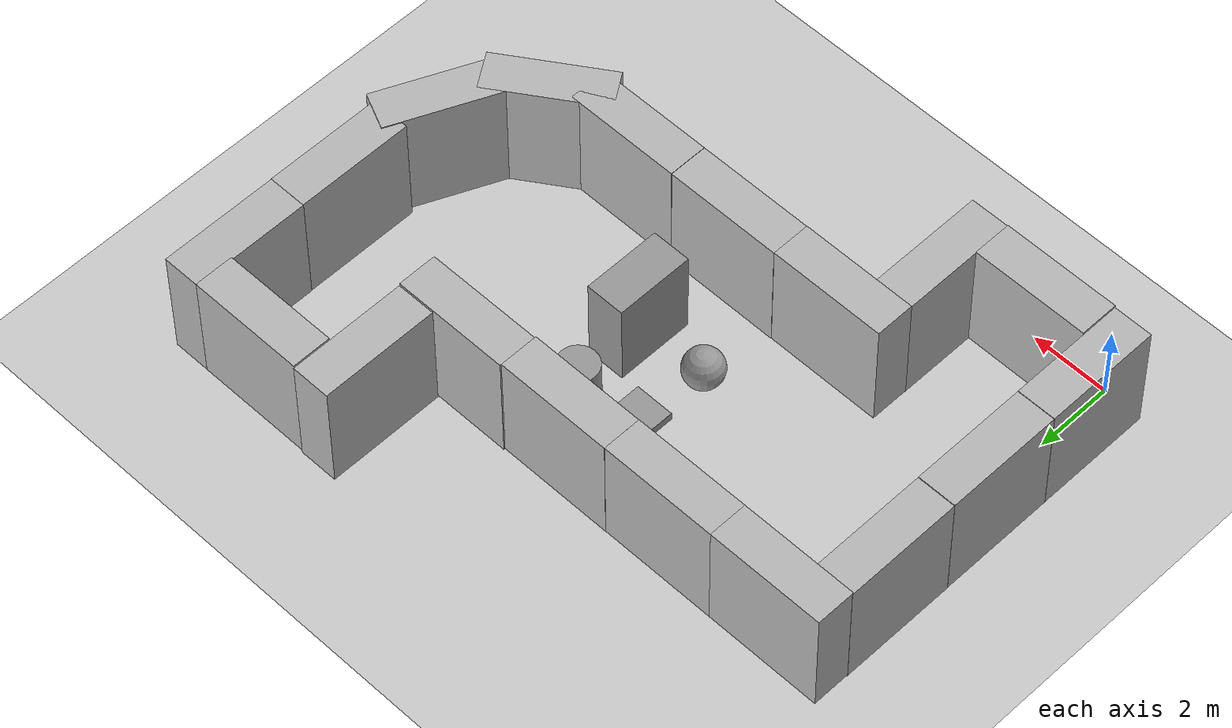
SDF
<sdf version="1.6">
 <world name="default">
  <light name="sun" type="directional">
   <pose>0 0 10 0 -0 0</pose>
   <diffuse>0.8 0.8 0.8 1</diffuse>
   <specular>0.2 0.2 0.2 1</specular>
   <attenuation>
    <range>1000</range>
    <constant>0.9</constant>
    <linear>0.01</linear>
    <quadratic>0.001</quadratic>
   </attenuation>
   <direction>-0.5 0.1 -0.9</direction>
  </light>
  <model name="ground_plane">
   <static>1</static>
   <link name="link">
    <collision name="collision">
     <geometry><plane><normal>0 0 1</normal><size>100 100</size></plane></geometry>
     <surface>
      <contact><collide_bitmask>65535</collide_bitmask></contact>
      <friction><ode><mu>100</mu><mu2>50</mu2></ode></friction>
     </surface>
    </collision>
    <visual name="visual">
     <cast_shadows>0</cast_shadows>
     <geometry><plane><normal>0 0 1</normal><size>100 100</size></plane></geometry>
     <material>
      <script><uri>file://media/materials/scripts/gazebo.material</uri><name>Gazebo/Grey</name></script>
     </material>
    </visual>
   </link>
  </model>
  <gravity>0 0 -9.8</gravity>
  <magnetic_field>6e-06 2.3e-05 -4.2e-05</magnetic_field>
  <atmosphere type="adiabatic"/>
  <physics name="default_physics" default="0" type="ode">
   <max_step_size>0.001</max_step_size>
   <real_time_factor>1</real_time_factor>
   <real_time_update_rate>1000</real_time_update_rate>
  </physics>
  <scene><ambient>0.4 0.4 0.4 1</ambient><background>0.7 0.7 0.7 1</background><shadows>1</shadows></scene>
  <spherical_coordinates>
   <surface_model>EARTH_WGS84</surface_model>
   <latitude_deg>0</latitude_deg>
   <longitude_deg>0</longitude_deg>
   <elevation>0</elevation>
   <heading_deg>0</heading_deg>
  </spherical_coordinates>
  <model name="brick_box_3x1x3">
   <static>1</static>
   <link name="chassis">
    <pose>0 0 1.5 0 -0 0</pose>
    <collision name="collision"><geometry><box><size>3 1 3</size></box></geometry></collision>
    <visual name="visual">
     <geometry><mesh><uri>model://brick_box_3x1x3/meshes/simple_box.dae</uri><scale>3 1 3</scale></mesh></geometry>
     <material>
      <script>
       <uri>model://brick_box_3x1x3/materials/scripts</uri>
       <uri>model://brick_box_3x1x3/materials/textures</uri>
       <name>BrickBox/Diffuse</name>
      </script>
     </material>
    </visual>
   </link>
   <pose>1.51624 0.50191 0 0 -0 0</pose>
  </model>
  <model name="brick_box_3x1x3_0">
   <static>1</static>
   <link name="chassis">
    <pose>0 0 1.5 0 -0 0</pose>
    <collision name="collision"><geometry><box><size>3 1 3</size></box></geometry></collision>
    <visual name="visual">
     <geometry><mesh><uri>model://brick_box_3x1x3/meshes/simple_box.dae</uri><scale>3 1 3</scale></mesh></geometry>
     <material>
      <script>
       <uri>model://brick_box_3x1x3/materials/scripts</uri>
       <uri>model://brick_box_3x1x3/materials/textures</uri>
       <name>BrickBox/Diffuse</name>
      </script>
     </material>
    </visual>
   </link>
   <pose>3.51375 1.50393 -0.02794 0 -0 1.5708</pose>
  </model>
  <model name="brick_box_3x1x3_0_clone">
   <static>1</static>
   <link name="chassis">
    <pose>0 0 1.5 0 -0 0</pose>
    <collision name="collision"><geometry><box><size>3 1 3</size></box></geometry></collision>
    <visual name="visual">
     <geometry><mesh><uri>model://brick_box_3x1x3/meshes/simple_box.dae</uri><scale>3 1 3</scale></mesh></geometry>
     <material>
      <script>
       <uri>model://brick_box_3x1x3/materials/scripts</uri>
       <uri>model://brick_box_3x1x3/materials/textures</uri>
       <name>BrickBox/Diffuse</name>
      </script>
     </material>
    </visual>
   </link>
   <pose>-0.499565 1.52608 -0.02794 0 -0 1.5708</pose>
  </model>
  <model name="brick_box_3x1x3_clone">
   <static>1</static>
   <link name="chassis">
    <pose>0 0 1.5 0 -0 0</pose>
    <collision name="collision"><geometry><box><size>3 1 3</size></box></geometry></collision>
    <visual name="visual">
     <geometry><mesh><uri>model://brick_box_3x1x3/meshes/simple_box.dae</uri><scale>3 1 3</scale></mesh></geometry>
     <material>
      <script>
       <uri>model://brick_box_3x1x3/materials/scripts</uri>
       <uri>model://brick_box_3x1x3/materials/textures</uri>
       <name>BrickBox/Diffuse</name>
      </script>
     </material>
    </visual>
   </link>
   <pose>4.50924 3.48498 0 0 -0 0</pose>
  </model>
  <model name="brick_box_3x1x3_clone_clone">
   <static>1</static>
   <link name="chassis">
    <pose>0 0 1.5 0 -0 0</pose>
    <collision name="collision"><geometry><box><size>3 1 3</size></box></geometry></collision>
    <visual name="visual">
     <geometry><mesh><uri>model://brick_box_3x1x3/meshes/simple_box.dae</uri><scale>3 1 3</scale></mesh></geometry>
     <material>
      <script>
       <uri>model://brick_box_3x1x3/materials/scripts</uri>
       <uri>model://brick_box_3x1x3/materials/textures</uri>
       <name>BrickBox/Diffuse</name>
      </script>
     </material>
    </visual>
   </link>
   <pose>7.50541 3.49349 0 0 -0 0</pose>
  </model>
  <model name="brick_box_3x1x3_0_clone_clone">
   <static>1</static>
   <link name="chassis">
    <pose>0 0 1.5 0 -0 0</pose>
    <collision name="collision"><geometry><box><size>3 1 3</size></box></geometry></collision>
    <visual name="visual">
     <geometry><mesh><uri>model://brick_box_3x1x3/meshes/simple_box.dae</uri><scale>3 1 3</scale></mesh></geometry>
     <material>
      <script>
       <uri>model://brick_box_3x1x3/materials/scripts</uri>
       <uri>model://brick_box_3x1x3/materials/textures</uri>
       <name>BrickBox/Diffuse</name>
      </script>
     </material>
    </visual>
   </link>
   <pose>-0.501636 4.53368 -0.02794 0 -0 1.5708</pose>
  </model>
  <model name="brick_box_3x1x3_0_clone_clone_clone">
   <static>1</static>
   <link name="chassis">
    <pose>0 0 1.5 0 -0 0</pose>
    <collision name="collision"><geometry><box><size>3 1 3</size></box></geometry></collision>
    <visual name="visual">
     <geometry><mesh><uri>model://brick_box_3x1x3/meshes/simple_box.dae</uri><scale>3 1 3</scale></mesh></geometry>
     <material>
      <script>
       <uri>model://brick_box_3x1x3/materials/scripts</uri>
       <uri>model://brick_box_3x1x3/materials/textures</uri>
       <name>BrickBox/Diffuse</name>
      </script>
     </material>
    </visual>
   </link>
   <pose>-0.506311 7.54462 -0.02794 0 -0 1.5708</pose>
  </model>
  <model name="brick_box_3x1x3_clone_clone_0">
   <static>1</static>
   <link name="chassis">
    <pose>0 0 1.5 0 -0 0</pose>
    <collision name="collision"><geometry><box><size>3 1 3</size></box></geometry></collision>
    <visual name="visual">
     <geometry><mesh><uri>model://brick_box_3x1x3/meshes/simple_box.dae</uri><scale>3 1 3</scale></mesh></geometry>
     <material>
      <script>
       <uri>model://brick_box_3x1x3/materials/scripts</uri>
       <uri>model://brick_box_3x1x3/materials/textures</uri>
       <name>BrickBox/Diffuse</name>
      </script>
     </material>
    </visual>
   </link>
   <pose>0.497941 9.50684 0 0 -0 0</pose>
  </model>
  <model name="brick_box_3x1x3_clone_clone_0_clone">
   <static>1</static>
   <link name="chassis">
    <pose>0 0 1.5 0 -0 0</pose>
    <collision name="collision"><geometry><box><size>3 1 3</size></box></geometry></collision>
    <visual name="visual">
     <geometry><mesh><uri>model://brick_box_3x1x3/meshes/simple_box.dae</uri><scale>3 1 3</scale></mesh></geometry>
     <material>
      <script>
       <uri>model://brick_box_3x1x3/materials/scripts</uri>
       <uri>model://brick_box_3x1x3/materials/textures</uri>
       <name>BrickBox/Diffuse</name>
      </script>
     </material>
    </visual>
   </link>
   <pose>3.49682 9.50712 0 0 -0 0</pose>
  </model>
  <model name="brick_box_3x1x3_clone_clone_0_clone_clone">
   <static>1</static>
   <link name="chassis">
    <pose>0 0 1.5 0 -0 0</pose>
    <collision name="collision"><geometry><box><size>3 1 3</size></box></geometry></collision>
    <visual name="visual">
     <geometry><mesh><uri>model://brick_box_3x1x3/meshes/simple_box.dae</uri><scale>3 1 3</scale></mesh></geometry>
     <material>
      <script>
       <uri>model://brick_box_3x1x3/materials/scripts</uri>
       <uri>model://brick_box_3x1x3/materials/textures</uri>
       <name>BrickBox/Diffuse</name>
      </script>
     </material>
    </visual>
   </link>
   <pose>6.49688 9.5128 0 0 -0 0</pose>
  </model>
  <model name="brick_box_3x1x3_clone_clone_0_clone_clone_clone_0">
   <static>1</static>
   <link name="chassis">
    <pose>0 0 1.5 0 -0 0</pose>
    <collision name="collision"><geometry><box><size>3 1 3</size></box></geometry></collision>
    <visual name="visual">
     <geometry><mesh><uri>model://brick_box_3x1x3/meshes/simple_box.dae</uri><scale>3 1 3</scale></mesh></geometry>
     <material>
      <script>
       <uri>model://brick_box_3x1x3/materials/scripts</uri>
       <uri>model://brick_box_3x1x3/materials/textures</uri>
       <name>BrickBox/Diffuse</name>
      </script>
     </material>
    </visual>
   </link>
   <pose>9.49333 9.54908 0 0 -0 0</pose>
  </model>
  <model name="brick_box_3x1x3_clone_clone_0_clone_clone_clone_0_clone">
   <static>1</static>
   <link name="chassis">
    <pose>0 0 1.5 0 -0 0</pose>
    <collision name="collision"><geometry><box><size>3 1 3</size></box></geometry></collision>
    <visual name="visual">
     <geometry><mesh><uri>model://brick_box_3x1x3/meshes/simple_box.dae</uri><scale>3 1 3</scale></mesh></geometry>
     <material>
      <script>
       <uri>model://brick_box_3x1x3/materials/scripts</uri>
       <uri>model://brick_box_3x1x3/materials/textures</uri>
       <name>BrickBox/Diffuse</name>
      </script>
     </material>
    </visual>
   </link>
   <pose>10.5143 3.49171 0 0 -0 0</pose>
  </model>
  <model name="brick_box_3x1x3_clone_clone_0_clone_clone_clone_0_clone_clone">
   <static>1</static>
   <link name="chassis">
    <pose>0 0 1.5 0 -0 0</pose>
    <collision name="collision"><geometry><box><size>3 1 3</size></box></geometry></collision>
    <visual name="visual">
     <geometry><mesh><uri>model://brick_box_3x1x3/meshes/simple_box.dae</uri><scale>3 1 3</scale></mesh></geometry>
     <material>
      <script>
       <uri>model://brick_box_3x1x3/materials/scripts</uri>
       <uri>model://brick_box_3x1x3/materials/textures</uri>
       <name>BrickBox/Diffuse</name>
      </script>
     </material>
    </visual>
   </link>
   <pose>12.4927 12.5439 0 0 -0 0</pose>
  </model>
  <model name="brick_box_3x1x3_0_clone_clone_clone_clone">
   <static>1</static>
   <link name="chassis">
    <pose>0 0 1.5 0 -0 0</pose>
    <collision name="collision"><geometry><box><size>3 1 3</size></box></geometry></collision>
    <visual name="visual">
     <geometry><mesh><uri>model://brick_box_3x1x3/meshes/simple_box.dae</uri><scale>3 1 3</scale></mesh></geometry>
     <material>
      <script>
       <uri>model://brick_box_3x1x3/materials/scripts</uri>
       <uri>model://brick_box_3x1x3/materials/textures</uri>
       <name>BrickBox/Diffuse</name>
      </script>
     </material>
    </visual>
   </link>
   <pose>10.4728 11.571 -0.02794 0 -0 1.5708</pose>
  </model>
  <model name="brick_box_3x1x3_0_clone_clone_clone_clone_0">
   <static>1</static>
   <link name="chassis">
    <pose>0 0 1.5 0 -0 0</pose>
    <collision name="collision"><geometry><box><size>3 1 3</size></box></geometry></collision>
    <visual name="visual">
     <geometry><mesh><uri>model://brick_box_3x1x3/meshes/simple_box.dae</uri><scale>3 1 3</scale></mesh></geometry>
     <material>
      <script>
       <uri>model://brick_box_3x1x3/materials/scripts</uri>
       <uri>model://brick_box_3x1x3/materials/textures</uri>
       <name>BrickBox/Diffuse</name>
      </script>
     </material>
    </visual>
   </link>
   <pose>14.4625 8.53431 -0.02794 0 -0 1.5708</pose>
  </model>
  <model name="brick_box_3x1x3_0_clone_clone_clone_clone_0_clone">
   <static>1</static>
   <link name="chassis">
    <pose>0 0 1.5 0 -0 0</pose>
    <collision name="collision"><geometry><box><size>3 1 3</size></box></geometry></collision>
    <visual name="visual">
     <geometry><mesh><uri>model://brick_box_3x1x3/meshes/simple_box.dae</uri><scale>3 1 3</scale></mesh></geometry>
     <material>
      <script>
       <uri>model://brick_box_3x1x3/materials/scripts</uri>
       <uri>model://brick_box_3x1x3/materials/textures</uri>
       <name>BrickBox/Diffuse</name>
      </script>
     </material>
    </visual>
   </link>
   <pose>14.4528 11.5347 -0.02794 0 -0 1.5708</pose>
  </model>
  <model name="brick_box_3x1x3_clone_clone_0_clone_clone_clone_0_clone_clone_0">
   <static>1</static>
   <link name="chassis">
    <pose>0 0 1.5 0 -0 0</pose>
    <collision name="collision"><geometry><box><size>3 1 3</size></box></geometry></collision>
    <visual name="visual">
     <geometry><mesh><uri>model://brick_box_3x1x3/meshes/simple_box.dae</uri><scale>3 1 3</scale></mesh></geometry>
     <material>
      <script>
       <uri>model://brick_box_3x1x3/materials/scripts</uri>
       <uri>model://brick_box_3x1x3/materials/textures</uri>
       <name>BrickBox/Diffuse</name>
      </script>
     </material>
    </visual>
   </link>
   <pose>12.69 3.9899 0 0 -0 0.588898</pose>
  </model>
  <model name="brick_box_3x1x3_clone_clone_0_clone_clone_clone_0_clone_clone_0_clone">
   <static>1</static>
   <link name="chassis">
    <pose>0 0 1.5 0 -0 0</pose>
    <collision name="collision"><geometry><box><size>3 1 3</size></box></geometry></collision>
    <visual name="visual">
     <geometry><mesh><uri>model://brick_box_3x1x3/meshes/simple_box.dae</uri><scale>3 1 3</scale></mesh></geometry>
     <material>
      <script>
       <uri>model://brick_box_3x1x3/materials/scripts</uri>
       <uri>model://brick_box_3x1x3/materials/textures</uri>
       <name>BrickBox/Diffuse</name>
      </script>
     </material>
    </visual>
   </link>
   <pose>14.1293 5.88394 0 0 -0 1.14515</pose>
  </model>
  <model name="unit_box_clone">
   <pose>6.52461 7.51113 0.109998 0 -0 0</pose>
   <link name="link">
    <inertial>
     <mass>1</mass>
     <inertia>
      <ixx>0.166667</ixx>
      <ixy>0</ixy>
      <ixz>0</ixz>
      <iyy>0.166667</iyy>
      <iyz>0</iyz>
      <izz>0.166667</izz>
     </inertia>
    </inertial>
    <collision name="collision"><geometry><box><size>1 1 0.219996</size></box></geometry></collision>
    <visual name="visual">
     <geometry><box><size>1 1 0.219996</size></box></geometry>
     <material>
      <script><name>Gazebo/Grey</name><uri>file://media/materials/scripts/gazebo.material</uri></script>
     </material>
    </visual>
   </link>
  </model>
  <model name="unit_box_clone_0">
   <pose>8.03102 5.98354 1.15537 0 -0 6.2e-05</pose>
   <link name="link">
    <inertial>
     <mass>1</mass>
     <inertia>
      <ixx>0.166667</ixx>
      <ixy>0</ixy>
      <ixz>0</ixz>
      <iyy>0.166667</iyy>
      <iyz>0</iyz>
      <izz>0.166667</izz>
     </inertia>
    </inertial>
    <collision name="collision"><geometry><box><size>1 1.99912 2.31073</size></box></geometry></collision>
    <visual name="visual">
     <geometry><box><size>1 1.99912 2.31073</size></box></geometry>
     <material>
      <script><name>Gazebo/Grey</name><uri>file://media/materials/scripts/gazebo.material</uri></script>
     </material>
    </visual>
   </link>
  </model>
  <model name="unit_cylinder">
   <pose>7.93841 7.88281 0.499993 -3e-06 -4e-06 -0</pose>
   <link name="link">
    <inertial>
     <mass>1</mass>
     <inertia><ixx>0.145833</ixx><ixy>0</ixy><ixz>0</ixz><iyy>0.145833</iyy><iyz>0</iyz><izz>0.125</izz></inertia>
    </inertial>
    <collision name="collision">
     <geometry><cylinder><radius>0.5</radius><length>1</length></cylinder></geometry>
    </collision>
    <visual name="visual">
     <geometry><cylinder><radius>0.5</radius><length>1</length></cylinder></geometry>
     <material>
      <script><name>Gazebo/Grey</name><uri>file://media/materials/scripts/gazebo.material</uri></script>
     </material>
    </visual>
   </link>
  </model>
  <model name="unit_sphere">
   <pose>6.235 5.83071 0.5 0 -0 0</pose>
   <link name="link">
    <inertial>
     <mass>1</mass>
     <inertia><ixx>0.1</ixx><ixy>0</ixy><ixz>0</ixz><iyy>0.1</iyy><iyz>0</iyz><izz>0.1</izz></inertia>
    </inertial>
    <collision name="collision"><geometry><sphere><radius>0.5</radius></sphere></geometry></collision>
    <visual name="visual">
     <geometry><sphere><radius>0.5</radius></sphere></geometry>
     <material>
      <script><name>Gazebo/Grey</name><uri>file://media/materials/scripts/gazebo.material</uri></script>
     </material>
    </visual>
   </link>
  </model>
 </world>
</sdf>
